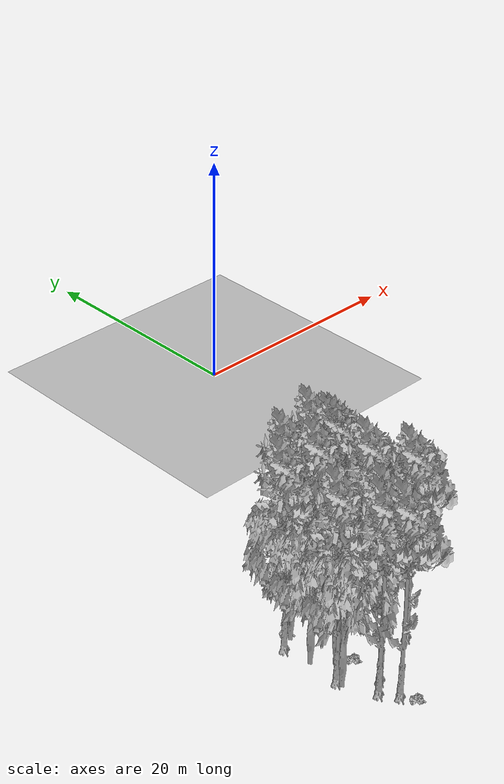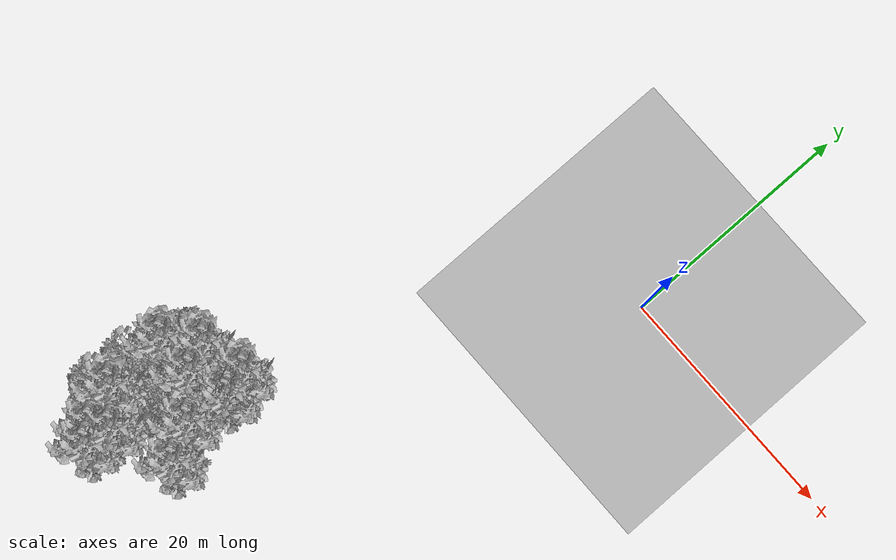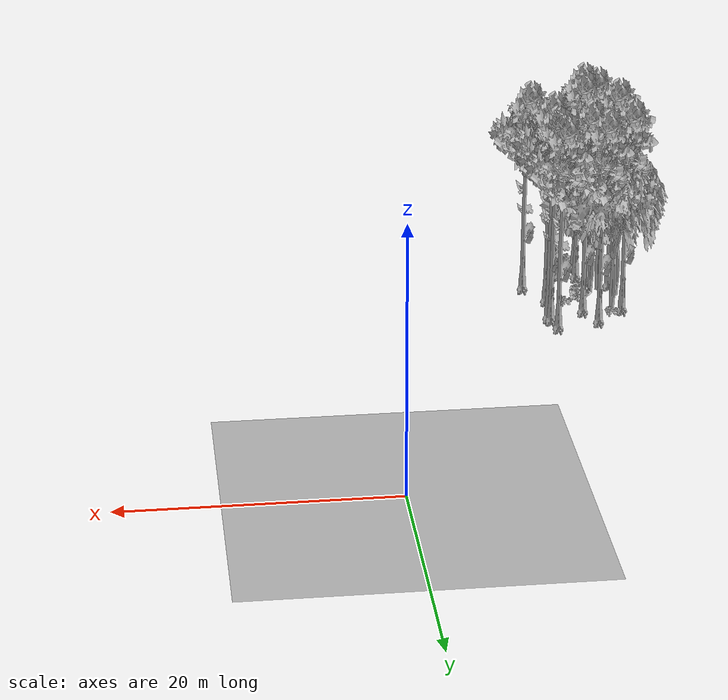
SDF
<sdf version="1.7">
 <world name="default">
  <model name="ground_plane">
   <static>1</static>
   <link name="link">
    <collision name="collision">
     <pose>-50 0 0 0 -0 0</pose>
     <geometry><plane><normal>0 0 1</normal><size>80 80</size></plane></geometry>
     <surface><contact><ode><min_depth>0.01</min_depth><max_vel>0</max_vel></ode></contact></surface>
    </collision>
    <visual name="grass">
     <cast_shadows>0</cast_shadows>
     <geometry>
      <mesh>
       <scale>0.46714285714285714 0.46714285714285714 0.1</scale>
       <uri>file://grass_plane/meshes/grass_plane.dae</uri>
      </mesh>
     </geometry>
    </visual>
   </link>
  </model>
  <model name="Tree 17">
   <static>1</static>
   <pose>-14.67669185627982 -27.64647952758592 0 1.57079 -0 0</pose>
   <link name="link">
    <collision name="collision">
     <geometry><mesh><scale>3.5 5 3.5</scale><uri>model://tree_9/meshes/tree_9.obj</uri></mesh></geometry>
    </collision>
    <visual name="visual">
     <geometry><mesh><scale>3.5 5 3.5</scale><uri>model://tree_9/meshes/tree_9.obj</uri></mesh></geometry>
    </visual>
   </link>
  </model>
  <model name="Tree 52">
   <static>1</static>
   <pose>-19.783725720731507 -28.681240774138068 0 1.57079 -0 0</pose>
   <link name="link">
    <collision name="collision">
     <geometry><mesh><scale>3.5 5 3.5</scale><uri>model://tree_2/meshes/tree_2.obj</uri></mesh></geometry>
    </collision>
    <visual name="visual">
     <geometry><mesh><scale>3.5 5 3.5</scale><uri>model://tree_2/meshes/tree_2.obj</uri></mesh></geometry>
    </visual>
   </link>
  </model>
  <model name="Tree 72">
   <static>1</static>
   <pose>-19.143099891804688 -36.44410198766056 0 1.57079 -0 0</pose>
   <link name="link">
    <collision name="collision">
     <geometry><mesh><scale>3.5 5 3.5</scale><uri>model://tree_9/meshes/tree_9.obj</uri></mesh></geometry>
    </collision>
    <visual name="visual">
     <geometry><mesh><scale>3.5 5 3.5</scale><uri>model://tree_9/meshes/tree_9.obj</uri></mesh></geometry>
    </visual>
   </link>
  </model>
  <model name="Tree 78">
   <static>1</static>
   <pose>-20.547308503092914 -28.912169012228645 0 1.57079 -0 0</pose>
   <link name="link">
    <collision name="collision">
     <geometry><mesh><scale>3.5 5 3.5</scale><uri>model://tree_9/meshes/tree_9.obj</uri></mesh></geometry>
    </collision>
    <visual name="visual">
     <geometry><mesh><scale>3.5 5 3.5</scale><uri>model://tree_9/meshes/tree_9.obj</uri></mesh></geometry>
    </visual>
   </link>
  </model>
  <model name="Tree 130">
   <static>1</static>
   <pose>-18.0608610979315 -31.365360203931285 0 1.57079 -0 0</pose>
   <link name="link">
    <collision name="collision">
     <geometry><mesh><scale>3.5 5 3.5</scale><uri>model://tree_2/meshes/tree_2.obj</uri></mesh></geometry>
    </collision>
    <visual name="visual">
     <geometry><mesh><scale>3.5 5 3.5</scale><uri>model://tree_2/meshes/tree_2.obj</uri></mesh></geometry>
    </visual>
   </link>
  </model>
  <model name="Tree 133">
   <static>1</static>
   <pose>-14.52542049438798 -28.05380800491429 0 1.57079 -0 0</pose>
   <link name="link">
    <collision name="collision">
     <geometry><mesh><scale>3.5 5 3.5</scale><uri>model://tree_9/meshes/tree_9.obj</uri></mesh></geometry>
    </collision>
    <visual name="visual">
     <geometry><mesh><scale>3.5 5 3.5</scale><uri>model://tree_9/meshes/tree_9.obj</uri></mesh></geometry>
    </visual>
   </link>
  </model>
  <model name="Tree 185">
   <static>1</static>
   <pose>-18.05140140478734 -35.58207799965761 0 1.57079 -0 0</pose>
   <link name="link">
    <collision name="collision">
     <geometry><mesh><scale>3.5 5 3.5</scale><uri>model://tree_9/meshes/tree_9.obj</uri></mesh></geometry>
    </collision>
    <visual name="visual">
     <geometry><mesh><scale>3.5 5 3.5</scale><uri>model://tree_9/meshes/tree_9.obj</uri></mesh></geometry>
    </visual>
   </link>
  </model>
  <model name="Tree 331">
   <static>1</static>
   <pose>-19.369518809536984 -32.6054036151832 0 1.57079 -0 0</pose>
   <link name="link">
    <collision name="collision">
     <geometry><mesh><scale>3.5 5 3.5</scale><uri>model://tree_2/meshes/tree_2.obj</uri></mesh></geometry>
    </collision>
    <visual name="visual">
     <geometry><mesh><scale>3.5 5 3.5</scale><uri>model://tree_2/meshes/tree_2.obj</uri></mesh></geometry>
    </visual>
   </link>
  </model>
  <model name="Tree 341">
   <static>1</static>
   <pose>-18.32808707398255 -26.876488682369597 0 1.57079 -0 0</pose>
   <link name="link">
    <collision name="collision">
     <geometry><mesh><scale>3.5 5 3.5</scale><uri>model://tree_9/meshes/tree_9.obj</uri></mesh></geometry>
    </collision>
    <visual name="visual">
     <geometry><mesh><scale>3.5 5 3.5</scale><uri>model://tree_9/meshes/tree_9.obj</uri></mesh></geometry>
    </visual>
   </link>
  </model>
  <model name="Tree 343">
   <static>1</static>
   <pose>-18.29254392464682 -37.62207009027783 0 1.57079 -0 0</pose>
   <link name="link">
    <collision name="collision">
     <geometry><mesh><scale>3.5 5 3.5</scale><uri>model://tree_9/meshes/tree_9.obj</uri></mesh></geometry>
    </collision>
    <visual name="visual">
     <geometry><mesh><scale>3.5 5 3.5</scale><uri>model://tree_9/meshes/tree_9.obj</uri></mesh></geometry>
    </visual>
   </link>
  </model>
  <model name="Tree 427">
   <static>1</static>
   <pose>-18.6723461747918 -32.11080001180477 0 1.57079 -0 0</pose>
   <link name="link">
    <collision name="collision">
     <geometry><mesh><scale>3.5 5 3.5</scale><uri>model://tree_2/meshes/tree_2.obj</uri></mesh></geometry>
    </collision>
    <visual name="visual">
     <geometry><mesh><scale>3.5 5 3.5</scale><uri>model://tree_2/meshes/tree_2.obj</uri></mesh></geometry>
    </visual>
   </link>
  </model>
  <model name="Tree 505">
   <static>1</static>
   <pose>-13.42899339537676 -33.85699556251286 0 1.57079 -0 0</pose>
   <link name="link">
    <collision name="collision">
     <geometry><mesh><scale>3.5 5 3.5</scale><uri>model://tree_9/meshes/tree_9.obj</uri></mesh></geometry>
    </collision>
    <visual name="visual">
     <geometry><mesh><scale>3.5 5 3.5</scale><uri>model://tree_9/meshes/tree_9.obj</uri></mesh></geometry>
    </visual>
   </link>
  </model>
  <model name="Tree 512">
   <static>1</static>
   <pose>-20.671166628039963 -34.43159268667234 0 1.57079 -0 0</pose>
   <link name="link">
    <collision name="collision">
     <geometry><mesh><scale>3.5 5 3.5</scale><uri>model://tree_2/meshes/tree_2.obj</uri></mesh></geometry>
    </collision>
    <visual name="visual">
     <geometry><mesh><scale>3.5 5 3.5</scale><uri>model://tree_2/meshes/tree_2.obj</uri></mesh></geometry>
    </visual>
   </link>
  </model>
  <model name="Tree 546">
   <static>1</static>
   <pose>-20.579842773310297 -31.36938657217633 0 1.57079 -0 0</pose>
   <link name="link">
    <collision name="collision">
     <geometry><mesh><scale>3.5 5 3.5</scale><uri>model://tree_2/meshes/tree_2.obj</uri></mesh></geometry>
    </collision>
    <visual name="visual">
     <geometry><mesh><scale>3.5 5 3.5</scale><uri>model://tree_2/meshes/tree_2.obj</uri></mesh></geometry>
    </visual>
   </link>
  </model>
  <model name="Tree 594">
   <static>1</static>
   <pose>-14.8838614508912 -31.290678811536843 0 1.57079 -0 0</pose>
   <link name="link">
    <collision name="collision">
     <geometry><mesh><scale>3.5 5 3.5</scale><uri>model://tree_9/meshes/tree_9.obj</uri></mesh></geometry>
    </collision>
    <visual name="visual">
     <geometry><mesh><scale>3.5 5 3.5</scale><uri>model://tree_9/meshes/tree_9.obj</uri></mesh></geometry>
    </visual>
   </link>
  </model>
  <model name="Tree 597">
   <static>1</static>
   <pose>-17.43676256037903 -28.927685063513344 0 1.57079 -0 0</pose>
   <link name="link">
    <collision name="collision">
     <geometry><mesh><scale>3.5 5 3.5</scale><uri>model://tree_9/meshes/tree_9.obj</uri></mesh></geometry>
    </collision>
    <visual name="visual">
     <geometry><mesh><scale>3.5 5 3.5</scale><uri>model://tree_9/meshes/tree_9.obj</uri></mesh></geometry>
    </visual>
   </link>
  </model>
  <model name="Tree 627">
   <static>1</static>
   <pose>-15.003828495172883 -26.102743378523925 0 1.57079 -0 0</pose>
   <link name="link">
    <collision name="collision">
     <geometry><mesh><scale>3.5 5 3.5</scale><uri>model://tree_9/meshes/tree_9.obj</uri></mesh></geometry>
    </collision>
    <visual name="visual">
     <geometry><mesh><scale>3.5 5 3.5</scale><uri>model://tree_9/meshes/tree_9.obj</uri></mesh></geometry>
    </visual>
   </link>
  </model>
  <model name="Tree 629">
   <static>1</static>
   <pose>-20.37030090946526 -33.705892741515264 0 1.57079 -0 0</pose>
   <link name="link">
    <collision name="collision">
     <geometry><mesh><scale>3.5 5 3.5</scale><uri>model://tree_9/meshes/tree_9.obj</uri></mesh></geometry>
    </collision>
    <visual name="visual">
     <geometry><mesh><scale>3.5 5 3.5</scale><uri>model://tree_9/meshes/tree_9.obj</uri></mesh></geometry>
    </visual>
   </link>
  </model>
  <model name="Bush 206">
   <static>1</static>
   <pose>-15.64969171896524 -33.27587193228752 0 1.57079 -0 0</pose>
   <link name="link">
    <collision name="collision">
     <geometry><mesh><scale>2 2 2</scale><uri>model://bush_0/meshes/bush_0.obj</uri></mesh></geometry>
     <surface><contact><collide_without_contact>false</collide_without_contact></contact></surface>
    </collision>
    <visual name="visual">
     <geometry><mesh><scale>2 2 2</scale><uri>model://bush_0/meshes/bush_0.obj</uri></mesh></geometry>
    </visual>
   </link>
  </model>
  <model name="Bush 360">
   <static>1</static>
   <pose>-16.329240136706172 -30.51533065550825 0 1.57079 -0 0</pose>
   <link name="link">
    <collision name="collision">
     <geometry><mesh><scale>2 2 2</scale><uri>model://bush_2/meshes/bush_2.obj</uri></mesh></geometry>
     <surface><contact><collide_without_contact>false</collide_without_contact></contact></surface>
    </collision>
    <visual name="visual">
     <geometry><mesh><scale>2 2 2</scale><uri>model://bush_2/meshes/bush_2.obj</uri></mesh></geometry>
    </visual>
   </link>
  </model>
  <model name="Bush 543">
   <static>1</static>
   <pose>-18.19514330694619 -33.26420037038898 0 1.57079 -0 0</pose>
   <link name="link">
    <collision name="collision">
     <geometry><mesh><scale>2 2 2</scale><uri>model://bush_2/meshes/bush_2.obj</uri></mesh></geometry>
     <surface><contact><collide_without_contact>false</collide_without_contact></contact></surface>
    </collision>
    <visual name="visual">
     <geometry><mesh><scale>2 2 2</scale><uri>model://bush_2/meshes/bush_2.obj</uri></mesh></geometry>
    </visual>
   </link>
  </model>
  <model name="Bush 549">
   <static>1</static>
   <pose>-17.356667476864146 -30.331259971998207 0 1.57079 -0 0</pose>
   <link name="link">
    <collision name="collision">
     <geometry><mesh><scale>2 2 2</scale><uri>model://bush_1/meshes/bush_1.obj</uri></mesh></geometry>
     <surface><contact><collide_without_contact>false</collide_without_contact></contact></surface>
    </collision>
    <visual name="visual">
     <geometry><mesh><scale>2 2 2</scale><uri>model://bush_1/meshes/bush_1.obj</uri></mesh></geometry>
    </visual>
   </link>
  </model>
  <model name="Bush 554">
   <static>1</static>
   <pose>-18.02758097846936 -38.89412469969934 0 1.57079 -0 0</pose>
   <link name="link">
    <collision name="collision">
     <geometry><mesh><scale>2 2 2</scale><uri>model://bush_2/meshes/bush_2.obj</uri></mesh></geometry>
     <surface><contact><collide_without_contact>false</collide_without_contact></contact></surface>
    </collision>
    <visual name="visual">
     <geometry><mesh><scale>2 2 2</scale><uri>model://bush_2/meshes/bush_2.obj</uri></mesh></geometry>
    </visual>
   </link>
  </model>
  <model name="Bush 593">
   <static>1</static>
   <pose>-19.625532817694495 -28.23338529194877 0 1.57079 -0 0</pose>
   <link name="link">
    <collision name="collision">
     <geometry><mesh><scale>2 2 2</scale><uri>model://bush_2/meshes/bush_2.obj</uri></mesh></geometry>
     <surface><contact><collide_without_contact>false</collide_without_contact></contact></surface>
    </collision>
    <visual name="visual">
     <geometry><mesh><scale>2 2 2</scale><uri>model://bush_2/meshes/bush_2.obj</uri></mesh></geometry>
    </visual>
   </link>
  </model>
 </world>
</sdf>
